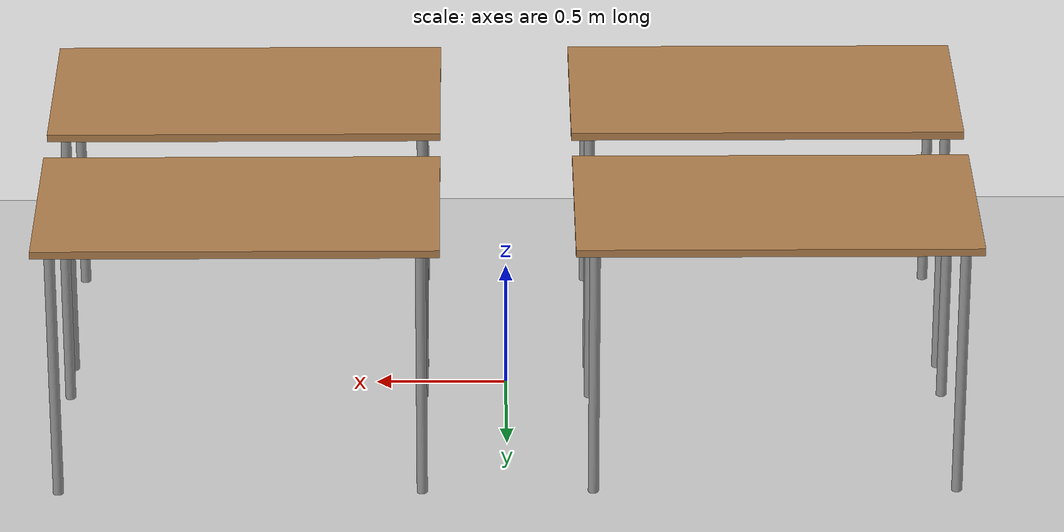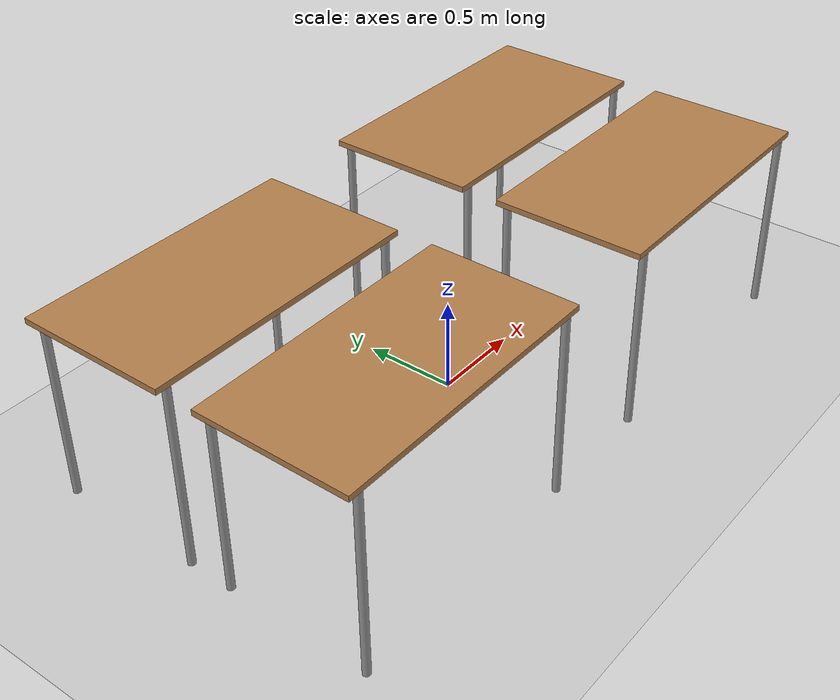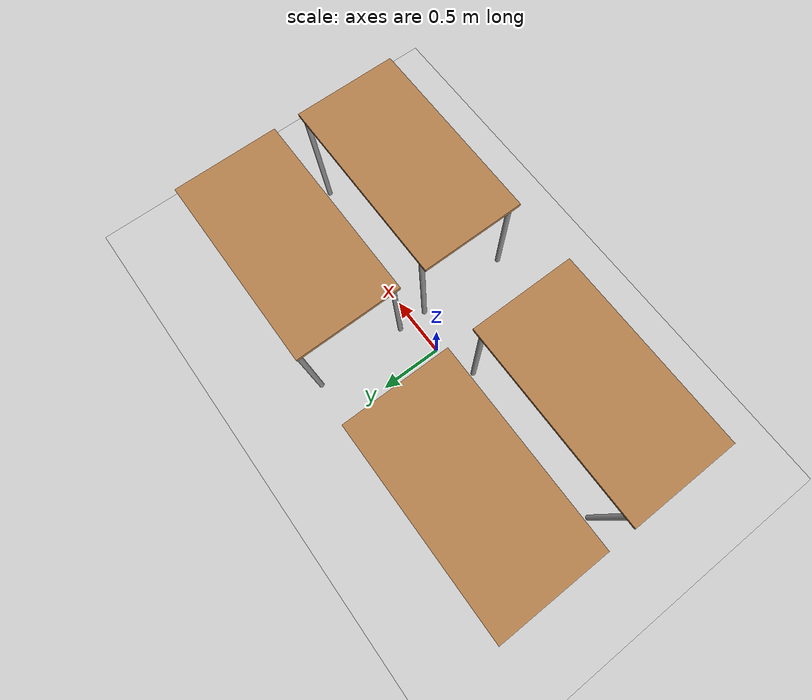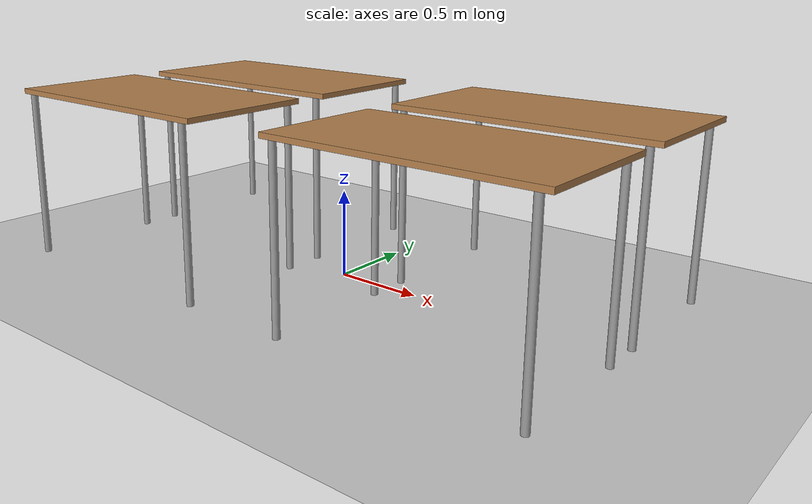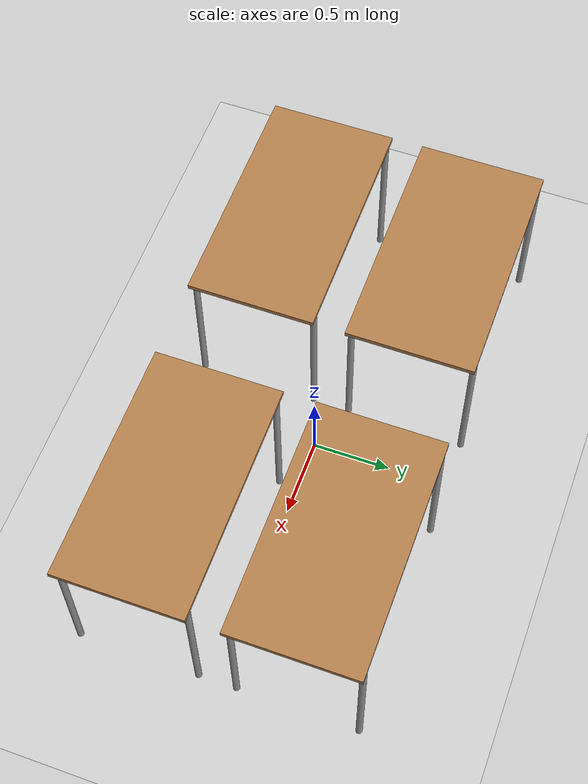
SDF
<sdf version="1.4">
 <world name="custom_tb3_world">
  <include><uri>model://sun</uri></include>
  <include><uri>model://ground_plane</uri></include>
  <physics type="ode">
   <real_time_update_rate>1000.0</real_time_update_rate>
   <max_step_size>0.001</max_step_size>
   <real_time_factor>1</real_time_factor>
  </physics>
  <include><uri>model://table</uri><name>table_1</name><pose>1.0 0.5 0 0 0 0</pose></include>
  <include><uri>model://table</uri><name>table_2</name><pose>-1.0 0.5 0 0 0 0</pose></include>
  <include><uri>model://table</uri><name>table_3</name><pose>1.0 -0.5 0 0 0 0</pose></include>
  <include><uri>model://table</uri><name>table_4</name><pose>-1.0 -0.5 0 0 0 0</pose></include>
  <scene><ambient>0.4 0.4 0.4 1</ambient><background>0.7 0.7 0.7 1</background><shadows>true</shadows></scene>
 </world>
</sdf>

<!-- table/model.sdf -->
<sdf version="1.5">
  <model name="table">
    <static>true</static>
    <link name="link">
      <collision name="surface">
        <pose>0 0 1.0 0 0 0</pose>
        <geometry>
          <box>
            <size>1.5 0.8 0.03</size>
          </box>
        </geometry>
        <surface>
          <friction>
            <ode>
              <mu>0.6</mu>
              <mu2>0.6</mu2>
            </ode>
          </friction>
        </surface>
      </collision>
      <visual name="visual1">
        <pose>0 0 1.0 0 0 0</pose>
        <geometry>
          <box>
            <size>1.5 0.8 0.03</size>
          </box>
        </geometry>
        <material>
          <script>
            <uri>model://media/materials/scripts/gazebo.material</uri>
            <name>Gazebo/Wood</name>
          </script>
        </material>
      </visual>
      <collision name="front_left_leg">
        <pose>0.68 0.38 0.5 0 0 0</pose>
        <geometry>
          <cylinder>
            <radius>0.02</radius>
            <length>1.0</length>
          </cylinder>
        </geometry>
      </collision>
      <visual name="front_left_leg">
        <pose>0.68 0.38 0.5 0 0 0</pose>
        <geometry>
          <cylinder>
            <radius>0.02</radius>
            <length>1.0</length>
          </cylinder>
        </geometry>
        <material>
          <script>
            <uri>model://media/materials/scripts/gazebo.material</uri>
            <name>Gazebo/Grey</name>
          </script>
        </material>
      </visual>
      <collision name="front_right_leg">
        <pose>0.68 -0.38 0.5 0 0 0</pose>
        <geometry>
          <cylinder>
            <radius>0.02</radius>
            <length>1.0</length>
          </cylinder>
        </geometry>
      </collision>
      <visual name="front_right_leg">
        <pose>0.68 -0.38 0.5 0 0 0</pose>
        <geometry>
          <cylinder>
            <radius>0.02</radius>
            <length>1.0</length>
          </cylinder>
        </geometry>
        <material>
          <script>
            <uri>model://media/materials/scripts/gazebo.material</uri>
            <name>Gazebo/Grey</name>
          </script>
        </material>
      </visual>
      <collision name="back_right_leg">
        <pose>-0.68 -0.38 0.5 0 0 0</pose>
        <geometry>
          <cylinder>
            <radius>0.02</radius>
            <length>1.0</length>
          </cylinder>
        </geometry>
      </collision>
      <visual name="back_right_leg">
        <pose>-0.68 -0.38 0.5 0 0 0</pose>
        <geometry>
          <cylinder>
            <radius>0.02</radius>
            <length>1.0</length>
          </cylinder>
        </geometry>
        <material>
          <script>
            <uri>model://media/materials/scripts/gazebo.material</uri>
            <name>Gazebo/Grey</name>
          </script>
        </material>
      </visual>
      <collision name="back_left_leg">
        <pose>-0.68 0.38 0.5 0 0 0</pose>
        <geometry>
          <cylinder>
            <radius>0.02</radius>
            <length>1.0</length>
          </cylinder>
        </geometry>
      </collision>
      <visual name="back_left_leg">
        <pose>-0.68 0.38 0.5 0 0 0</pose>
        <geometry>
          <cylinder>
            <radius>0.02</radius>
            <length>1.0</length>
          </cylinder>
        </geometry>
        <material>
          <script>
            <uri>model://media/materials/scripts/gazebo.material</uri>
            <name>Gazebo/Grey</name>
          </script>
        </material>
      </visual>
    </link>
  </model>
</sdf>
